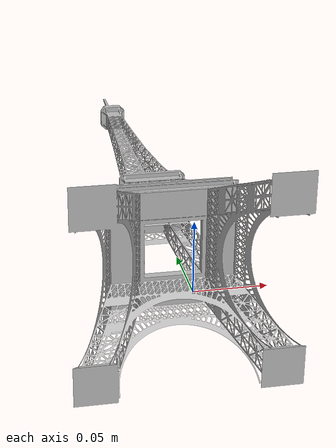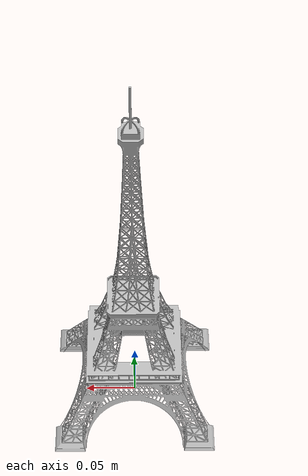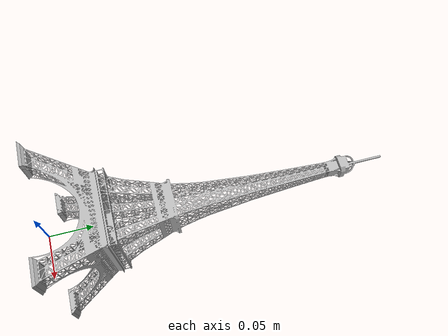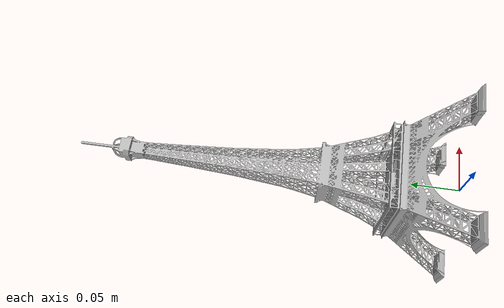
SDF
<?xml version='1.0'?>
<sdf version='1.4'>
  <model name='s__1845'>
    <pose>0 0 0 0 0 0</pose>
    <static>true</static>
    <link name='link'>
      <collision name='collision'>
        <pose>0 0 0 0 0 0</pose>
        <geometry>
          <box>
            <size>0.16 0.16 2</size>
          </box>
        </geometry>
      </collision>
      <visual name='visual'>
        <pose>0 0 0 0 0 0</pose>
        <geometry>
          <mesh><uri>model://s__1845/s__1845.dae</uri></mesh>
        </geometry>
      </visual>
    </link>
  </model>
</sdf>
